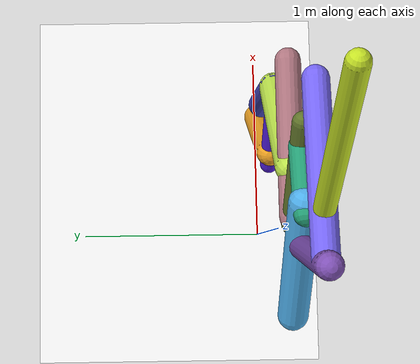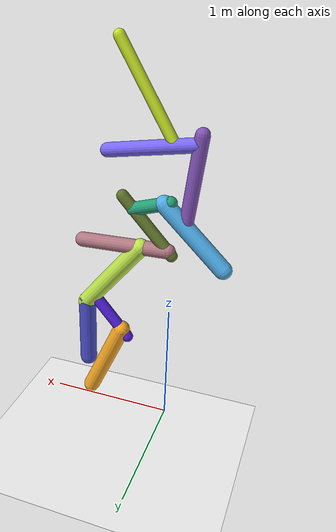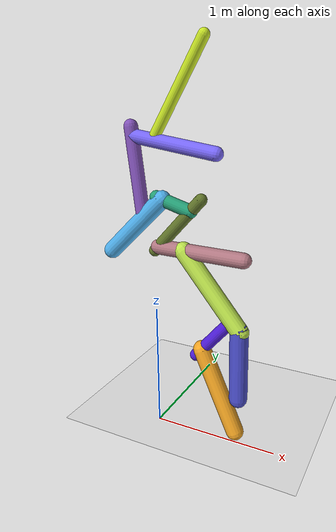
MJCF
<mujoco model="morphology">
  <option timestep="0.01"/>
  <default>
    <default class="/"/>
    <default class="0/"/>
    <default class="0/1/"/>
    <default class="0/1/2/"/>
    <default class="0/1/2/3/"/>
    <default class="0/1/2/4/"/>
    <default class="0/1/2/4/5/"/>
    <default class="0/6/"/>
    <default class="0/6/7/"/>
    <default class="0/6/7/8/"/>
    <default class="0/6/7/8/9/"/>
    <default class="0/6/7/8/9/10/"/>
  </default>
  <asset>
    <texture name="texplane" type="2d" builtin="checker" rgb1="0.10000000000000001 0.20000000000000001 0.29999999999999999" rgb2="0.20000000000000001 0.29999999999999999 0.40000000000000002" width="300" height="300"/>
    <material name="MatPlane" class="/" texture="texplane" texrepeat="20 20" specular="1" shininess="1" reflectance="0.5"/>
  </asset>
  <worldbody>
    <light name="//unnamed_light_0" class="/" directional="true" pos="0 0 1.5" dir="0 0 -1.3" cutoff="100" exponent="1" diffuse="1 1 1" specular="0.10000000000000001 0.10000000000000001 0.10000000000000001"/>
    <geom name="ground" class="/" type="plane" size="15 15 0.5" material="MatPlane" rgba="1 1 1 1"/>
    <site name="body" class="/" size="9.9999999999999995e-07 9.9999999999999995e-07 9.9999999999999995e-07" pos="0 0 1.484684443473816"/>
    <body pos="0 0 1.484684443473816" name="0/">
      <joint name="0/rootx/" class="/" type="slide" axis="1 0 0" limited="false" stiffness="0" armature="0" damping="0"/>
      <joint name="0/rootz/" class="/" type="slide" axis="0 0 1" limited="false" stiffness="0" armature="0" damping="0"/>
      <joint name="0/rooty/" class="/" type="hinge" axis="0 1 0" limited="false" stiffness="0" armature="0" damping="0"/>
      <geom name="0/geom" class="0/" type="capsule" contype="1" conaffinity="1" condim="3" size="0.045349930694248794" rgba="0.38213763905916753 0.46055035568149205 0.17057271067407387 1" friction="0.59999999999999998 0.10000000000000001 0.10000000000000001" fromto="0 0 0 0.38234995399289695 0 0.41638047031153236"/>
      <site name="0/end0" class="0/" size="0.0050000000000000001" pos="0.38234995399289695 0 0.41638047031153236"/>
      <site name="0/attach1" class="0/" size="9.9999999999999995e-07 9.9999999999999995e-07 9.9999999999999995e-07" pos="0.030049718876742102 0 0.032724251560547202"/>
      <body pos="0.030049718876742102 0 0.032724251560547202" name="0/1/">
        <joint name="0/1/joint/" class="0/" type="hinge" axis="0 1 0" limited="true" range="-44.100263582763468 44.100263582763468"/>
        <geom name="0/1/geom" class="0/1/" type="capsule" contype="1" conaffinity="1" condim="3" size="0.057169407197473779" rgba="0.69712089086652462 0.470167696068027 0.51050984423267787 1" friction="0.59999999999999998 0.10000000000000001 0.10000000000000001" fromto="0 0 0 0.68158334181528701 0 -0.013811460830917666"/>
        <site name="0/1/end1" class="0/1/" size="0.0050000000000000001" pos="0.68158334181528701 0 -0.013811460830917666"/>
        <site name="0/1/attach2" class="0/1/" size="9.9999999999999995e-07 9.9999999999999995e-07 9.9999999999999995e-07" pos="0.21116196127524695 0 -0.0042789413681462917"/>
        <body pos="0.21116196127524695 0 -0.0042789413681462917" name="0/1/2/">
          <joint name="0/1/2/joint/" class="0/1/" type="hinge" axis="0 1 0" limited="true" range="-52.352976973029229 52.352976973029229"/>
          <geom name="0/1/2/geom" class="0/1/2/" type="capsule" contype="1" conaffinity="1" condim="3" size="0.068709625925673215" rgba="0.73776534850314957 0.89022501283597599 0.2981026038657999 1" friction="0.59999999999999998 0.10000000000000001 0.10000000000000001" fromto="0 0 0 0.45773985690016294 0 -0.56012962314215387"/>
          <site name="0/1/2/end2" class="0/1/2/" size="0.0050000000000000001" pos="0.45773985690016294 0 -0.56012962314215387"/>
          <site name="0/1/2/attach3" class="0/1/2/" size="9.9999999999999995e-07 9.9999999999999995e-07 9.9999999999999995e-07" pos="0.45106206727823944 0 -0.55195810884649921"/>
          <body pos="0.45106206727823944 0 -0.55195810884649921" name="0/1/2/3/">
            <joint name="0/1/2/3/joint/" class="0/1/2/" type="hinge" axis="0 1 0" limited="true" range="-68.395919875101896 68.395919875101896"/>
            <geom name="0/1/2/3/geom" class="0/1/2/3/" type="capsule" contype="1" conaffinity="1" condim="3" size="0.069870365538480528" rgba="0.28699454762512056 0.29945835946269805 0.7823068377216964 1" friction="0.59999999999999998 0.10000000000000001 0.10000000000000001" fromto="0 0 0 0.0067142189812920972 0 -0.56158528455453527"/>
            <site name="0/1/2/3/end3" class="0/1/2/3/" size="0.0050000000000000001" pos="0.0067142189812920972 0 -0.56158528455453527"/>
          </body>
          <site name="0/1/2/attach4" class="0/1/2/" size="9.9999999999999995e-07 9.9999999999999995e-07 9.9999999999999995e-07" pos="0.39304474930535727 0 -0.48096315841342618"/>
          <body pos="0.39304474930535727 0 -0.48096315841342618" name="0/1/2/4/">
            <joint name="0/1/2/4/joint/" class="0/1/2/" type="hinge" axis="0 1 0" limited="true" range="-37.955251738079085 37.955251738079085"/>
            <geom name="0/1/2/4/geom" class="0/1/2/4/" type="capsule" contype="1" conaffinity="1" condim="3" size="0.046834654118743928" rgba="0.31470745580214554 0.11636398224264166 0.85792347333272867 1" friction="0.59999999999999998 0.10000000000000001 0.10000000000000001" fromto="0 0 0 -0.29059721163060509 0 -0.34327525497440509"/>
            <site name="0/1/2/4/end4" class="0/1/2/4/" size="0.0050000000000000001" pos="-0.29059721163060509 0 -0.34327525497440509"/>
            <site name="0/1/2/4/attach5" class="0/1/2/4/" size="9.9999999999999995e-07 9.9999999999999995e-07 9.9999999999999995e-07" pos="-0.23987976191082 0 -0.28336399365665471"/>
            <body pos="-0.23987976191082 0 -0.28336399365665471" name="0/1/2/4/5/">
              <joint name="0/1/2/4/5/joint/" class="0/1/2/4/" type="hinge" axis="0 1 0" limited="true" range="-37.978293487855446 37.978293487855446"/>
              <geom name="0/1/2/4/5/geom" class="0/1/2/4/5/" type="capsule" contype="1" conaffinity="1" condim="3" size="0.068316532519975201" rgba="0.95077404104493846 0.64814599056442568 0.13958814320218416 1" friction="0.59999999999999998 0.10000000000000001 0.10000000000000001" fromto="0 0 0 0.28455453612557124 0 -0.64880257826141507"/>
              <site name="0/1/2/4/5/end5" class="0/1/2/4/5/" size="0.0050000000000000001" pos="0.28455453612557124 0 -0.64880257826141507"/>
            </body>
          </body>
        </body>
      </body>
      <site name="0/attach6" class="0/" size="9.9999999999999995e-07 9.9999999999999995e-07 9.9999999999999995e-07" pos="0.29975677204065593 0 0.32643619913623373"/>
      <body pos="0.29975677204065593 0 0.32643619913623373" name="0/6/">
        <geom name="0/6/geom" class="0/6/" type="capsule" contype="1" conaffinity="1" condim="3" size="0.050156387228220058" rgba="0.14370774727712421 0.62358070615829486 0.46215346617376674 1" friction="0.59999999999999998 0.10000000000000001 0.10000000000000001" fromto="0 0 0 -0.27599329187809529 0 0.08117583636090453"/>
        <site name="0/6/end6" class="0/6/" size="0.0050000000000000001" pos="-0.27599329187809529 0 0.08117583636090453"/>
        <site name="0/6/attach7" class="0/6/" size="9.9999999999999995e-07 9.9999999999999995e-07 9.9999999999999995e-07" pos="-0.23108503503596806 0 0.067967307690286791"/>
        <body pos="-0.23108503503596806 0 0.067967307690286791" name="0/6/7/">
          <joint name="0/6/7/joint/" class="0/6/" type="hinge" axis="0 1 0" limited="true" range="-53.801177038626641 53.801177038626641"/>
          <geom name="0/6/7/geom" class="0/6/7/" type="capsule" contype="1" conaffinity="1" condim="3" size="0.066000420468869531" rgba="0.30927299597001789 0.68464531956515151 0.91884715159530639 1" friction="0.59999999999999998 0.10000000000000001 0.10000000000000001" fromto="0 0 0 -0.45615737215504049 0 -0.44035390867186397"/>
          <site name="0/6/7/end7" class="0/6/7/" size="0.0050000000000000001" pos="-0.45615737215504049 0 -0.44035390867186397"/>
          <site name="0/6/7/attach8" class="0/6/7/" size="9.9999999999999995e-07 9.9999999999999995e-07 9.9999999999999995e-07" pos="-0.16267336680562314 0 -0.15703758676801746"/>
          <body pos="-0.16267336680562314 0 -0.15703758676801746" name="0/6/7/8/">
            <geom name="0/6/7/8/geom" class="0/6/7/8/" type="capsule" contype="1" conaffinity="1" condim="3" size="0.051687650711841324" rgba="0.50915549268666249 0.3245171675760925 0.72340054922477637 1" friction="0.59999999999999998 0.10000000000000001 0.10000000000000001" fromto="0 0 0 -0.080279137813001888 0 0.66344828474422601"/>
            <site name="0/6/7/8/end8" class="0/6/7/8/" size="0.0050000000000000001" pos="-0.080279137813001888 0 0.66344828474422601"/>
            <site name="0/6/7/8/attach9" class="0/6/7/8/" size="9.9999999999999995e-07 9.9999999999999995e-07 9.9999999999999995e-07" pos="-0.072509191714093951 0 0.5992353702522536"/>
            <body pos="-0.072509191714093951 0 0.5992353702522536" name="0/6/7/8/9/">
              <joint name="0/6/7/8/9/joint/" class="0/6/7/8/" type="hinge" axis="0 1 0" limited="true" range="-59.20921802161719 59.20921802161719"/>
              <geom name="0/6/7/8/9/geom" class="0/6/7/8/9/" type="capsule" contype="1" conaffinity="1" condim="3" size="0.051465657903719646" rgba="0.46942266515084097 0.40585471127245509 0.97316113175352836 1" friction="0.59999999999999998 0.10000000000000001 0.10000000000000001" fromto="0 0 0 0.66038470145148809 0 -0.099296954173311192"/>
              <site name="0/6/7/8/9/end9" class="0/6/7/8/9/" size="0.0050000000000000001" pos="0.66038470145148809 0 -0.099296954173311192"/>
              <site name="0/6/7/8/9/attach10" class="0/6/7/8/9/" size="9.9999999999999995e-07 9.9999999999999995e-07 9.9999999999999995e-07" pos="0.17053059208778021 0 -0.025641369871939483"/>
              <body pos="0.17053059208778021 0 -0.025641369871939483" name="0/6/7/8/9/10/">
                <joint name="0/6/7/8/9/10/joint/" class="0/6/7/8/9/" type="hinge" axis="0 1 0" limited="true" range="-30.221453250241449 30.221453250241449"/>
                <geom name="0/6/7/8/9/10/geom" class="0/6/7/8/9/10/" type="capsule" contype="1" conaffinity="1" condim="3" size="0.040264532316130509" rgba="0.78062418994861504 0.89143588553388187 0.14672315771627942 1" friction="0.59999999999999998 0.10000000000000001 0.10000000000000001" fromto="0 0 0 0.39632115272980761 0 0.66396366640868121"/>
                <site name="0/6/7/8/9/10/end10" class="0/6/7/8/9/10/" size="0.0050000000000000001" pos="0.39632115272980761 0 0.66396366640868121"/>
              </body>
            </body>
          </body>
        </body>
      </body>
      <camera name="0/side" class="0/" mode="trackcom" pos="0.40000000000000002 -4 0.20000000000000001" quat="0.70699999999999996 0.70699999999999996 0 0"/>
    </body>
  </worldbody>
  <actuator>
    <motor name="0/1/motor" class="0/1/" ctrllimited="true" ctrlrange="-1 1" gear="51" joint="0/1/joint/"/>
    <motor name="0/1/2/motor" class="0/1/2/" ctrllimited="true" ctrlrange="-1 1" gear="86" joint="0/1/2/joint/"/>
    <motor name="0/1/2/3/motor" class="0/1/2/3/" ctrllimited="true" ctrlrange="-1 1" gear="53" joint="0/1/2/3/joint/"/>
    <motor name="0/1/2/4/motor" class="0/1/2/4/" ctrllimited="true" ctrlrange="-1 1" gear="58" joint="0/1/2/4/joint/"/>
    <motor name="0/1/2/4/5/motor" class="0/1/2/4/5/" ctrllimited="true" ctrlrange="-1 1" gear="73" joint="0/1/2/4/5/joint/"/>
    <motor name="0/6/7/motor" class="0/6/7/" ctrllimited="true" ctrlrange="-1 1" gear="70" joint="0/6/7/joint/"/>
    <motor name="0/6/7/8/9/motor" class="0/6/7/8/9/" ctrllimited="true" ctrlrange="-1 1" gear="85" joint="0/6/7/8/9/joint/"/>
    <motor name="0/6/7/8/9/10/motor" class="0/6/7/8/9/10/" ctrllimited="true" ctrlrange="-1 1" gear="64" joint="0/6/7/8/9/10/joint/"/>
  </actuator>
  <sensor>
    <subtreelinvel name="velocity" body="0/"/>
  </sensor>
</mujoco>
